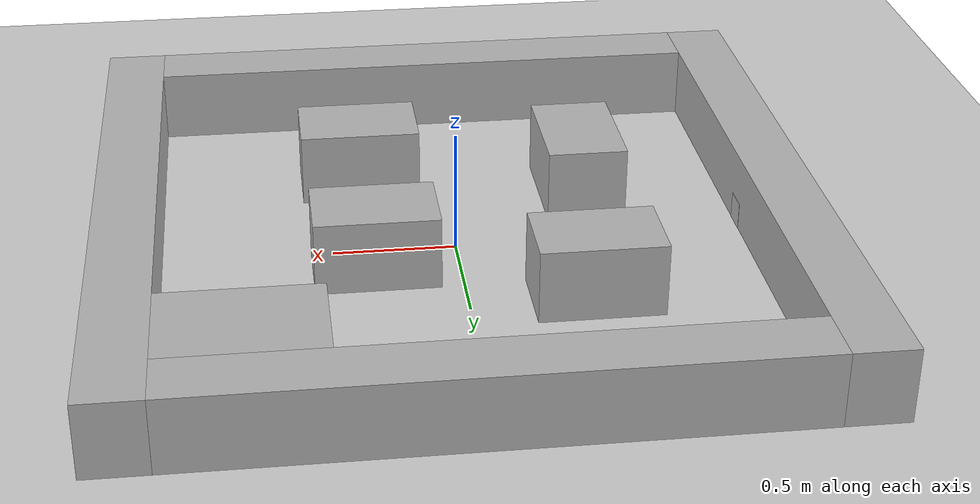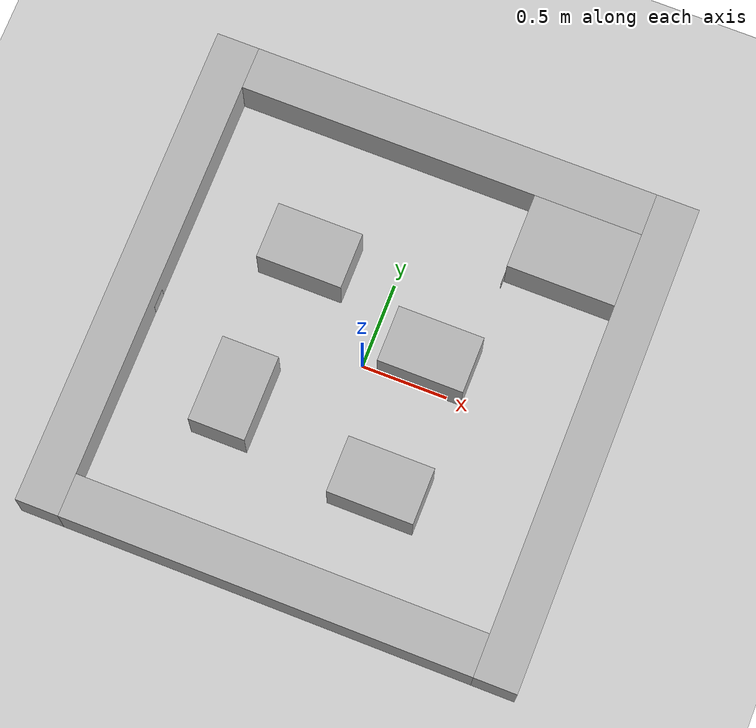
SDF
<sdf version="1.10">
 <world name="empty">
  <physics name="1ms" type="ignored">
   <max_step_size>0.001</max_step_size>
   <real_time_factor>1</real_time_factor>
   <real_time_update_rate>1000</real_time_update_rate>
  </physics>
  <plugin name="gz::sim::systems::Physics" filename="gz-sim-physics-system"/>
  <plugin name="gz::sim::systems::UserCommands" filename="gz-sim-user-commands-system"/>
  <plugin name="gz::sim::systems::SceneBroadcaster" filename="gz-sim-scene-broadcaster-system"/>
  <plugin name="gz::sim::systems::Contact" filename="gz-sim-contact-system"/>
  <plugin name="gz::sim::systems::ParticleEmitter" filename="gz-sim-particle-emitter-system"/>
  <gravity>0 0 -9.8000000000000007</gravity>
  <magnetic_field>5.5644999999999998e-06 2.2875799999999999e-05 -4.2388400000000002e-05</magnetic_field>
  <atmosphere type="adiabatic"/>
  <scene>
   <ambient>0.400000006 0.400000006 0.400000006 1</ambient>
   <background>0.699999988 0.699999988 0.699999988 1</background>
   <shadows>true</shadows>
  </scene>
  <model name="ground_plane">
   <static>true</static>
   <link name="link">
    <collision name="collision">
     <geometry><plane><normal>0 0 1</normal><size>100 100</size></plane></geometry>
    </collision>
    <visual name="visual">
     <geometry><plane><normal>0 0 1</normal><size>100 100</size></plane></geometry>
     <material>
      <ambient>0.800000012 0.800000012 0.800000012 1</ambient>
      <diffuse>0.800000012 0.800000012 0.800000012 1</diffuse>
      <specular>0.800000012 0.800000012 0.800000012 1</specular>
     </material>
    </visual>
    <inertial>
     <mass>1</mass>
     <inertia><ixx>1</ixx><ixy>0</ixy><ixz>0</ixz><iyy>1</iyy><iyz>0</iyz><izz>1</izz></inertia>
    </inertial>
   </link>
   <pose>4 0 0 0 0 0</pose>
  </model>
  <include><uri>model://Aruco13</uri><name>Aruco13</name><pose>0.555 0.761 0.055 0 0 3.14</pose></include>
  <include><uri>model://Aruco11</uri><name>Aruco11</name><pose>-1.19 -0.075 0.055 0 0 0</pose></include>
  <model name="box">
   <pose>1.315 0 0.15 0 0 0</pose>
   <link name="box_link">
    <inertial>
     <inertia><ixx>0.16666</ixx><ixy>0</ixy><ixz>0</ixz><iyy>0.16666</iyy><iyz>0</iyz><izz>0.16666</izz></inertia>
     <mass>1</mass>
    </inertial>
    <collision name="box_collision"><geometry><box><size>0.25 2.880 0.3</size></box></geometry></collision>
    <visual name="box_visual">
     <geometry><box><size>0.25 2.880 0.3</size></box></geometry>
     <material>
      <ambient>0.300000012 0.300000012 0.300000012 1</ambient>
      <diffuse>0.699999988 0.699999988 0.699999988 1</diffuse>
      <specular>1 1 1 1</specular>
     </material>
    </visual>
   </link>
   <static>false</static>
  </model>
  <model name="box_0">
   <pose>0 1.315 0.15 0 0 0</pose>
   <link name="box_link">
    <inertial>
     <inertia><ixx>0.16666</ixx><ixy>0</ixy><ixz>0</ixz><iyy>0.16666</iyy><iyz>0</iyz><izz>0.16666</izz></inertia>
     <mass>1</mass>
    </inertial>
    <collision name="box_collision"><geometry><box><size>2.380 0.25 0.3</size></box></geometry></collision>
    <visual name="box_visual">
     <geometry><box><size>2.380 0.25 0.3</size></box></geometry>
     <material>
      <ambient>0.300000012 0.300000012 0.300000012 1</ambient>
      <diffuse>0.699999988 0.699999988 0.699999988 1</diffuse>
      <specular>1 1 1 1</specular>
     </material>
    </visual>
   </link>
   <static>false</static>
  </model>
  <model name="box_1">
   <pose>0 -1.315 0.15 0 0 0</pose>
   <link name="box_link">
    <inertial>
     <inertia><ixx>0.16666</ixx><ixy>0</ixy><ixz>0</ixz><iyy>0.16666</iyy><iyz>0</iyz><izz>0.16666</izz></inertia>
     <mass>1</mass>
    </inertial>
    <collision name="box_collision"><geometry><box><size>2.380 0.25 0.3</size></box></geometry></collision>
    <visual name="box_visual">
     <geometry><box><size>2.380 0.25 0.3</size></box></geometry>
     <material>
      <ambient>0.300000012 0.300000012 0.300000012 1</ambient>
      <diffuse>0.699999988 0.699999988 0.699999988 1</diffuse>
      <specular>1 1 1 1</specular>
     </material>
    </visual>
   </link>
   <static>false</static>
  </model>
  <model name="box_2">
   <pose>-1.315 0 0.15 0 0 0</pose>
   <link name="box_link">
    <inertial>
     <inertia><ixx>0.16666</ixx><ixy>0</ixy><ixz>0</ixz><iyy>0.16666</iyy><iyz>0</iyz><izz>0.16666</izz></inertia>
     <mass>1</mass>
    </inertial>
    <collision name="box_collision"><geometry><box><size>0.25 2.880 0.3</size></box></geometry></collision>
    <visual name="box_visual">
     <geometry><box><size>0.25 2.880 0.3</size></box></geometry>
     <material>
      <ambient>0.300000012 0.300000012 0.300000012 1</ambient>
      <diffuse>0.699999988 0.699999988 0.699999988 1</diffuse>
      <specular>1 1 1 1</specular>
     </material>
    </visual>
   </link>
   <static>false</static>
  </model>
  <model name="col">
   <pose>0.8750 0.97 0.15 0 0 0</pose>
   <link name="col_link">
    <inertial>
     <inertia><ixx>0.16666</ixx><ixy>0</ixy><ixz>0</ixz><iyy>0.16666</iyy><iyz>0</iyz><izz>0.16666</izz></inertia>
     <mass>1</mass>
    </inertial>
    <collision name="col_collision"><geometry><box><size>0.63 0.44 0.3</size></box></geometry></collision>
    <visual name="col_visual">
     <geometry><box><size>0.63 0.44 0.3</size></box></geometry>
     <material>
      <ambient>0.300000012 0.300000012 0.300000012 1</ambient>
      <diffuse>0.699999988 0.699999988 0.699999988 1</diffuse>
      <specular>1 1 1 1</specular>
     </material>
    </visual>
   </link>
   <static>false</static>
  </model>
  <model name="obs_0">
   <pose>0.35 -0.625 0.15 0 0 0</pose>
   <link name="obs_link">
    <inertial>
     <inertia><ixx>0.16666</ixx><ixy>0</ixy><ixz>0</ixz><iyy>0.16666</iyy><iyz>0</iyz><izz>0.16666</izz></inertia>
     <mass>1</mass>
    </inertial>
    <collision name="obs_collision"><geometry><box><size>0.5 0.33 0.3</size></box></geometry></collision>
    <visual name="obs_visual">
     <geometry><box><size>0.5 0.33 0.3</size></box></geometry>
     <material>
      <ambient>0.300000012 0.300000012 0.300000012 1</ambient>
      <diffuse>0.699999988 0.699999988 0.699999988 1</diffuse>
      <specular>1 1 1 1</specular>
     </material>
    </visual>
   </link>
   <static>false</static>
  </model>
  <model name="obs_1">
   <pose>-0.58 -0.44 0.15 0 0 0</pose>
   <link name="obs_link">
    <inertial>
     <inertia><ixx>0.16666</ixx><ixy>0</ixy><ixz>0</ixz><iyy>0.16666</iyy><iyz>0</iyz><izz>0.16666</izz></inertia>
     <mass>1</mass>
    </inertial>
    <collision name="obs_collision"><geometry><box><size>0.33 0.5 0.3</size></box></geometry></collision>
    <visual name="obs_visual">
     <geometry><box><size>0.33 0.5 0.3</size></box></geometry>
     <material>
      <ambient>0.300000012 0.300000012 0.300000012 1</ambient>
      <diffuse>0.699999988 0.699999988 0.699999988 1</diffuse>
      <specular>1 1 1 1</specular>
     </material>
    </visual>
   </link>
   <static>false</static>
  </model>
  <model name="obs_2">
   <pose>-0.495 0.465 0.15 0 0 0</pose>
   <link name="obs_link">
    <inertial>
     <inertia><ixx>0.16666</ixx><ixy>0</ixy><ixz>0</ixz><iyy>0.16666</iyy><iyz>0</iyz><izz>0.16666</izz></inertia>
     <mass>1</mass>
    </inertial>
    <collision name="obs_collision"><geometry><box><size>0.5 0.33 0.3</size></box></geometry></collision>
    <visual name="obs_visual">
     <geometry><box><size>0.5 0.33 0.3</size></box></geometry>
     <material>
      <ambient>0.300000012 0.300000012 0.300000012 1</ambient>
      <diffuse>0.699999988 0.699999988 0.699999988 1</diffuse>
      <specular>1 1 1 1</specular>
     </material>
    </visual>
   </link>
   <static>false</static>
  </model>
  <model name="obs_3">
   <pose>0.34 0.155 0.15 0 0 0</pose>
   <link name="obs_link">
    <inertial>
     <inertia><ixx>0.16666</ixx><ixy>0</ixy><ixz>0</ixz><iyy>0.16666</iyy><iyz>0</iyz><izz>0.16666</izz></inertia>
     <mass>1</mass>
    </inertial>
    <collision name="obs_collision"><geometry><box><size>0.5 0.33 0.3</size></box></geometry></collision>
    <visual name="obs_visual">
     <geometry><box><size>0.5 0.33 0.3</size></box></geometry>
     <material>
      <ambient>0.300000012 0.300000012 0.300000012 1</ambient>
      <diffuse>0.699999988 0.699999988 0.699999988 1</diffuse>
      <specular>1 1 1 1</specular>
     </material>
    </visual>
   </link>
   <static>false</static>
  </model>
  <light name="sun" type="directional">
   <pose>0 0 10 0 0 0</pose>
   <intensity>1</intensity>
   <direction>-0.5 0.10000000000000001 -0.90000000000000002</direction>
   <diffuse>0.800000012 0.800000012 0.800000012 1</diffuse>
   <specular>0.200000003 0.200000003 0.200000003 1</specular>
   <attenuation>
    <range>1000</range>
    <linear>0.0099999997764825821</linear>
    <constant>0.89999997615814209</constant>
    <quadratic>0.0010000000474974513</quadratic>
   </attenuation>
   <spot><inner_angle>0</inner_angle><outer_angle>0</outer_angle><falloff>0</falloff></spot>
  </light>
 </world>
</sdf>

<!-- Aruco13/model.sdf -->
<sdf version="1.6">
  <model name="Aruco13">
    <pose>0 0 0 0 0 0</pose>
    <static>true</static>
    <link name="link">
      <visual name="visual">
        <geometry>
          <mesh>
            <uri>model://Aruco13/meshes/aruco4x4_13.dae</uri>
            <scale>1 1 1</scale>
          </mesh>
        </geometry>
      </visual>
    </link>
  </model>
</sdf>

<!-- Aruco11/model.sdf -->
<sdf version="1.6">
  <model name="Aruco11">
    <pose>0 0 0 0 0 0</pose>
    <static>true</static>
    <link name="link">
      <visual name="visual">
        <geometry>
          <mesh>
            <uri>model://Aruco11/meshes/aruco4x4_11.dae</uri>
            <scale>1 1 1</scale>
          </mesh>
        </geometry>
      </visual>
    </link>
  </model>
</sdf>
